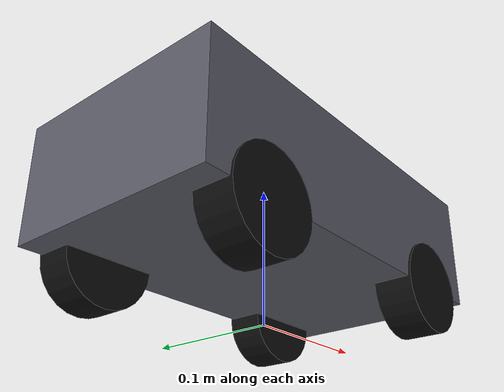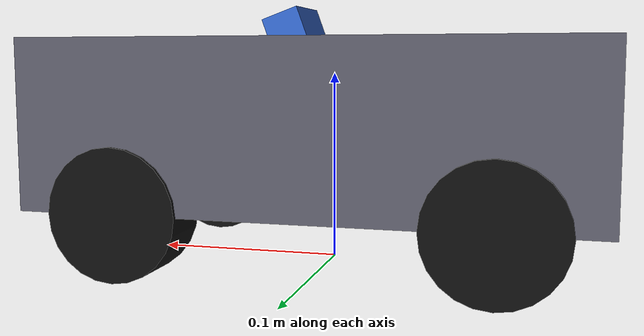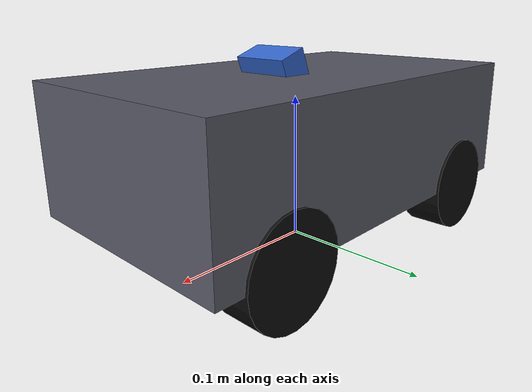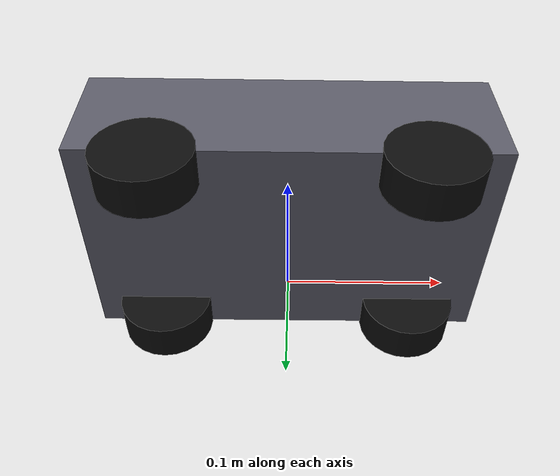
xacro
<?xml version="1.0"?>
<robot xmlns:xacro="http://www.ros.org/wiki/xacro" name="wro_bot">

  <!-- ============================================================
       Geometry parameters. Replace these with measured values.
       ============================================================ -->
  <!-- TODO(measure): axle-to-axle distance from the real chassis / CAD -->
  <xacro:property name="wheelbase" value="0.18"/>
  <!-- TODO(measure): left-to-right wheel centerline distance -->
  <xacro:property name="track_width" value="0.136"/>
  <!-- TODO(measure): wheel rolling radius (including tire) -->
  <xacro:property name="wheel_radius" value="0.033"/>
  <!-- TODO(measure): tire width -->
  <xacro:property name="wheel_thickness" value="0.028"/>
  <!-- TODO(measure): mechanical max steer of the front wheels (30 deg) -->
  <xacro:property name="max_steer_angle" value="0.5236"/>

  <!-- TODO(measure): chassis outer box from CAD -->
  <xacro:property name="chassis_length" value="0.28"/>
  <xacro:property name="chassis_width" value="0.16"/>
  <xacro:property name="chassis_height" value="0.085"/>

  <!-- Sensor mount offsets (all in base_link frame). -->
  <xacro:property name="lidar_xyz" value="0.0 0.05 ${0.085-chassis_z}"/>
  <!-- TODO(measure): IMU mount position on real bot -->
  <xacro:property name="imu_xyz" value="0.0 0.00 0.01"/>
  <xacro:property name="camera_x" value="0.02162"/>
  <xacro:property name="camera_y" value="0.0"/>
  <xacro:property name="camera_z" value="0.0466"/>
  <!-- Camera pitch: negative = looking down (WRO block detection). -->
  <xacro:property name="camera_pitch" value="${pi/9}"/>

  <!-- Derived. -->
  <xacro:property name="half_l" value="${wheelbase/2}"/>
  <xacro:property name="half_t" value="${track_width/2}"/>
  <xacro:property name="chassis_z" value="${wheel_radius + chassis_height/2}"/>
  <!-- ============================================================
       Materials (visual only).
       ============================================================ -->
  <material name="wro_body_grey">
    <color rgba="0.35 0.35 0.4 1.0"/>
  </material>
  <material name="wro_wheel_black">
    <color rgba="0.05 0.05 0.05 1.0"/>
  </material>
  <material name="wro_sensor_blue">
    <color rgba="0.2 0.4 0.8 1.0"/>
  </material>

  <!-- ============================================================
       Reusable macros.
       ============================================================ -->
  <xacro:macro name="inertial_box" params="mass x y z">
    <inertial>
      <origin xyz="0 0 0" rpy="0 0 0"/>
      <mass value="${mass}"/>
      <inertia
        ixx="${(1.0/12.0)*mass*(y*y + z*z)}" ixy="0" ixz="0"
        iyy="${(1.0/12.0)*mass*(x*x + z*z)}" iyz="0"
        izz="${(1.0/12.0)*mass*(x*x + y*y)}"/>
    </inertial>
  </xacro:macro>

  <xacro:macro name="inertial_cyl" params="mass r l">
    <inertial>
      <origin xyz="0 0 0" rpy="0 0 0"/>
      <mass value="${mass}"/>
      <inertia
        ixx="${(1.0/12.0)*mass*(3*r*r + l*l)}" ixy="0" ixz="0"
        iyy="${(1.0/12.0)*mass*(3*r*r + l*l)}" iyz="0"
        izz="${0.5*mass*r*r}"/>
    </inertial>
  </xacro:macro>

  <xacro:macro name="wheel_link" params="name">
    <link name="${name}">
      <visual>
        <origin xyz="0 0 0" rpy="${pi/2} 0 0"/>
        <geometry>
          <cylinder radius="${wheel_radius}" length="${wheel_thickness}"/>
        </geometry>
        <material name="wro_wheel_black"/>
      </visual>
      <collision>
        <origin xyz="0 0 0" rpy="${pi/2} 0 0"/>
        <geometry>
          <cylinder radius="${wheel_radius}" length="${wheel_thickness}"/>
        </geometry>
      </collision>
      <xacro:inertial_cyl mass="0.05" r="${wheel_radius}" l="${wheel_thickness}"/>
    </link>
  </xacro:macro>

  <link name="base_footprint"/>

  <link name="base_link">
    <visual>
      <origin xyz="0 0 0" rpy="0 0 0"/>
      <geometry>
        <box size="${chassis_length} ${chassis_width} ${chassis_height}"/>
      </geometry>
      <material name="wro_body_grey"/>
    </visual>
    <collision>
      <origin xyz="0 0 0" rpy="0 0 0"/>
      <geometry>
        <box size="${chassis_length} ${chassis_width} ${chassis_height}"/>
      </geometry>
    </collision>
    <xacro:inertial_box mass="1.5" x="${chassis_length}" y="${chassis_width}" z="${chassis_height}"/>
  </link>

  <!-- Lift base_link (chassis centre) chassis_z above the ground plane. -->
  <joint name="base_footprint_to_base_link" type="fixed">
    <parent link="base_footprint"/>
    <child link="base_link"/>
    <origin xyz="0 0 ${chassis_z}" rpy="0 0 0"/>
  </joint>

  <!-- Steering knuckles (front left, front right). -->
  <link name="front_left_wheel_steer">
    <xacro:inertial_box mass="0.02" x="0.02" y="0.02" z="0.02"/>
  </link>
  <link name="front_right_wheel_steer">
    <xacro:inertial_box mass="0.02" x="0.02" y="0.02" z="0.02"/>
  </link>

  <joint name="front_left_wheel_steer_joint" type="revolute">
    <parent link="base_link"/>
    <child link="front_left_wheel_steer"/>
    <origin xyz="${half_l} ${half_t} ${-chassis_height/2}" rpy="0 0 0"/>
    <axis xyz="0 0 1"/>
    <limit lower="${-max_steer_angle}" upper="${max_steer_angle}"
           effort="10.0" velocity="5.0"/>
  </joint>

  <joint name="front_right_wheel_steer_joint" type="revolute">
    <parent link="base_link"/>
    <child link="front_right_wheel_steer"/>
    <origin xyz="${half_l} ${-half_t} ${-chassis_height/2}" rpy="0 0 0"/>
    <axis xyz="0 0 1"/>
    <limit lower="${-max_steer_angle}" upper="${max_steer_angle}"
           effort="10.0" velocity="5.0"/>
  </joint>

  <!-- Wheels. -->
  <xacro:wheel_link name="front_left_wheel"/>
  <xacro:wheel_link name="front_right_wheel"/>
  <xacro:wheel_link name="rear_left_wheel"/>
  <xacro:wheel_link name="rear_right_wheel"/>

  <joint name="front_left_wheel_joint" type="continuous">
    <parent link="front_left_wheel_steer"/>
    <child link="front_left_wheel"/>
    <origin xyz="0 0 0" rpy="0 0 0"/>
    <axis xyz="0 1 0"/>
  </joint>

  <joint name="front_right_wheel_joint" type="continuous">
    <parent link="front_right_wheel_steer"/>
    <child link="front_right_wheel"/>
    <origin xyz="0 0 0" rpy="0 0 0"/>
    <axis xyz="0 1 0"/>
  </joint>

  <joint name="rear_left_wheel_joint" type="continuous">
    <parent link="base_link"/>
    <child link="rear_left_wheel"/>
    <origin xyz="${-half_l} ${half_t} ${-chassis_height/2}" rpy="0 0 0"/>
    <axis xyz="0 1 0"/>
  </joint>

  <joint name="rear_right_wheel_joint" type="continuous">
    <parent link="base_link"/>
    <child link="rear_right_wheel"/>
    <origin xyz="${-half_l} ${-half_t} ${-chassis_height/2}" rpy="0 0 0"/>
    <axis xyz="0 1 0"/>
  </joint>

  <!-- Sensor frames. -->
  <link name="base_laser">
    <visual>
      <origin xyz="0 0 0" rpy="0 0 0"/>
      <geometry>
        <cylinder radius="0.025" length="0.03"/>
      </geometry>
      <material name="wro_sensor_blue"/>
    </visual>
    <xacro:inertial_cyl mass="0.05" r="0.025" l="0.03"/>
  </link>

  <joint name="base_link_to_base_laser" type="fixed">
    <parent link="base_link"/>
    <child link="base_laser"/>
    <origin xyz="${lidar_xyz}" rpy="0 0 -1.5708"/>
  </joint>

  <link name="imu_link">
    <xacro:inertial_box mass="0.01" x="0.02" y="0.02" z="0.005"/>
  </link>

  <joint name="base_link_to_imu_link" type="fixed">
    <parent link="base_link"/>
    <child link="imu_link"/>
    <origin xyz="${imu_xyz}" rpy="0 0 0"/>
  </joint>

  <link name="camera_link">
    <visual>
      <origin xyz="0 0 0" rpy="0 0 0"/>
      <geometry>
        <box size="0.02 0.04 0.02"/>
      </geometry>
      <material name="wro_sensor_blue"/>
    </visual>
    <xacro:inertial_box mass="0.02" x="0.02" y="0.04" z="0.02"/>
  </link>

  <joint name="base_link_to_camera_link" type="fixed">
    <parent link="base_link"/>
    <child link="camera_link"/>
    <origin xyz="${camera_x} ${camera_y} ${camera_z}" rpy="0 ${camera_pitch} 0"/>
  </joint>

  <!-- ROS image convention frame (Z forward, X right, Y down). Attach the
       Gazebo camera sensor here so the ROS bridge image already lives in the
       optical frame. -->
  <link name="camera_optical_frame"/>
  <joint name="camera_link_to_optical" type="fixed">
    <parent link="camera_link"/>
    <child link="camera_optical_frame"/>
    <origin xyz="0 0 0" rpy="${-pi/2} 0 ${-pi/2}"/>
  </joint>

  <!-- ============================================================
       Gazebo Harmonic plugin fragments.
       ============================================================ -->

  <gazebo>
    <plugin filename="gz-sim-ackermann-steering-system"
            name="gz::sim::systems::AckermannSteering">
      <!-- Driven wheels (RWD). left_joint / right_joint are the joints the
           plugin applies velocity to. -->
      <left_joint>rear_left_wheel_joint</left_joint>
      <right_joint>rear_right_wheel_joint</right_joint>
      <!-- Steered knuckles (front). -->
      <left_steering_joint>front_left_wheel_steer_joint</left_steering_joint>
      <right_steering_joint>front_right_wheel_steer_joint</right_steering_joint>
      <kingpin_width>${track_width}</kingpin_width>
      <steering_limit>${max_steer_angle}</steering_limit>
      <wheel_base>${wheelbase}</wheel_base>
      <wheel_separation>${track_width}</wheel_separation>
      <wheel_radius>${wheel_radius}</wheel_radius>
      <min_velocity>-1.0</min_velocity>
      <max_velocity>1.0</max_velocity>
      <min_acceleration>-2.0</min_acceleration>
      <max_acceleration>2.0</max_acceleration>
      <topic>/model/wro_bot/cmd_vel</topic>
      <odom_topic>/model/wro_bot/odometry</odom_topic>
      <tf_topic>/model/wro_bot/tf</tf_topic>
      <frame_id>odom</frame_id>
      <child_frame_id>base_footprint</child_frame_id>
      <odom_publish_frequency>30</odom_publish_frequency>
    </plugin>
  </gazebo>

  <!-- Joint states -->
  <gazebo>
    <plugin filename="gz-sim-joint-state-publisher-system"
            name="gz::sim::systems::JointStatePublisher">
      <topic>/model/wro_bot/joint_state</topic>
    </plugin>
  </gazebo>

  <!-- GPU Lidar on base_laser. -->
  <gazebo reference="base_laser">
    <sensor name="wro_lidar" type="gpu_lidar">
      <topic>/lidar</topic>
      <update_rate>10</update_rate>
      <always_on>1</always_on>
      <visualize>false</visualize>
      <gz_frame_id>base_laser</gz_frame_id>
      <lidar>
        <scan>
          <horizontal>
            <samples>360</samples>
            <resolution>1</resolution>
            <min_angle>-3.141592653589793</min_angle>
            <max_angle>3.141592653589793</max_angle>
          </horizontal>
          <vertical>
            <samples>1</samples>
            <resolution>1</resolution>
            <min_angle>0.0</min_angle>
            <max_angle>0.0</max_angle>
          </vertical>
        </scan>
        <range>
          <min>0.20</min>
          <max>8.0</max>
          <resolution>0.01</resolution>
        </range>
        <noise>
          <type>gaussian</type>
          <mean>0.0</mean>
          <stddev>0.01</stddev>
        </noise>
      </lidar>
    </sensor>
  </gazebo>

  <!-- IMU on imu_link. -->
  <gazebo reference="imu_link">
    <sensor name="wro_imu" type="imu">
      <topic>/imu</topic>
      <update_rate>100</update_rate>
      <always_on>1</always_on>
      <gz_frame_id>imu_link</gz_frame_id>
    </sensor>
  </gazebo>

  <!-- RGB camera on camera_link (attached to the optical frame so the ROS
       image already lives in optical convention). -->
  <gazebo reference="camera_link">
    <sensor name="wro_camera" type="camera">
      <topic>/camera</topic>
      <update_rate>30</update_rate>
      <always_on>1</always_on>
      <gz_frame_id>camera_optical_frame</gz_frame_id>
      <camera>
        <horizontal_fov>1.0472</horizontal_fov>
        <image>
          <width>640</width>
          <height>480</height>
          <format>R8G8B8</format>
        </image>
        <clip>
          <near>0.05</near>
          <far>50.0</far>
        </clip>
      </camera>
    </sensor>
  </gazebo>

</robot>
